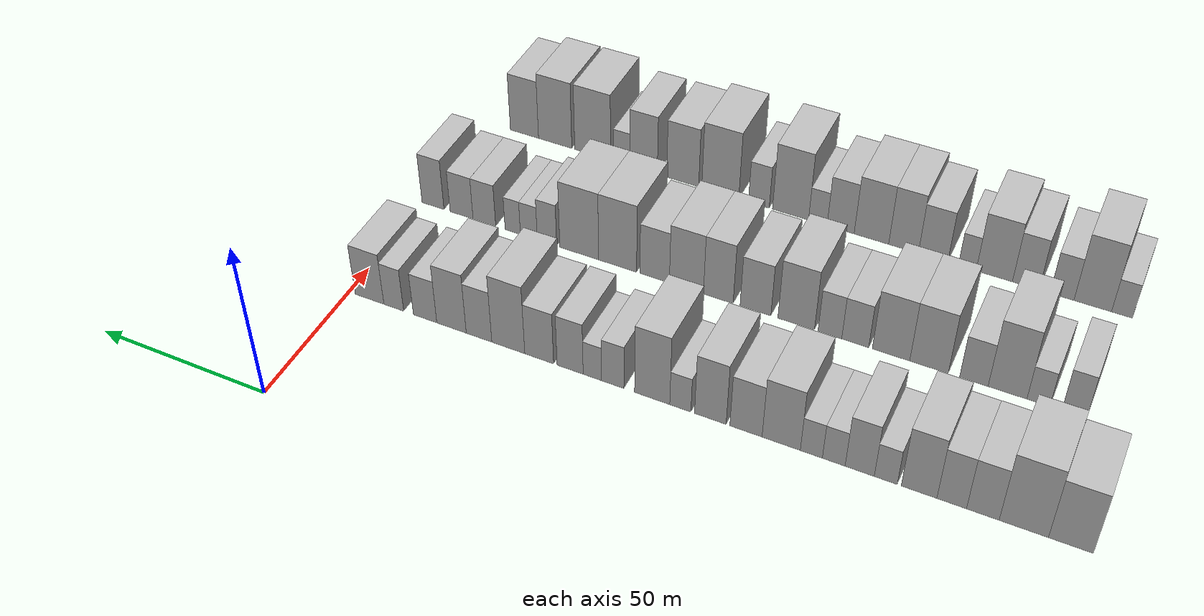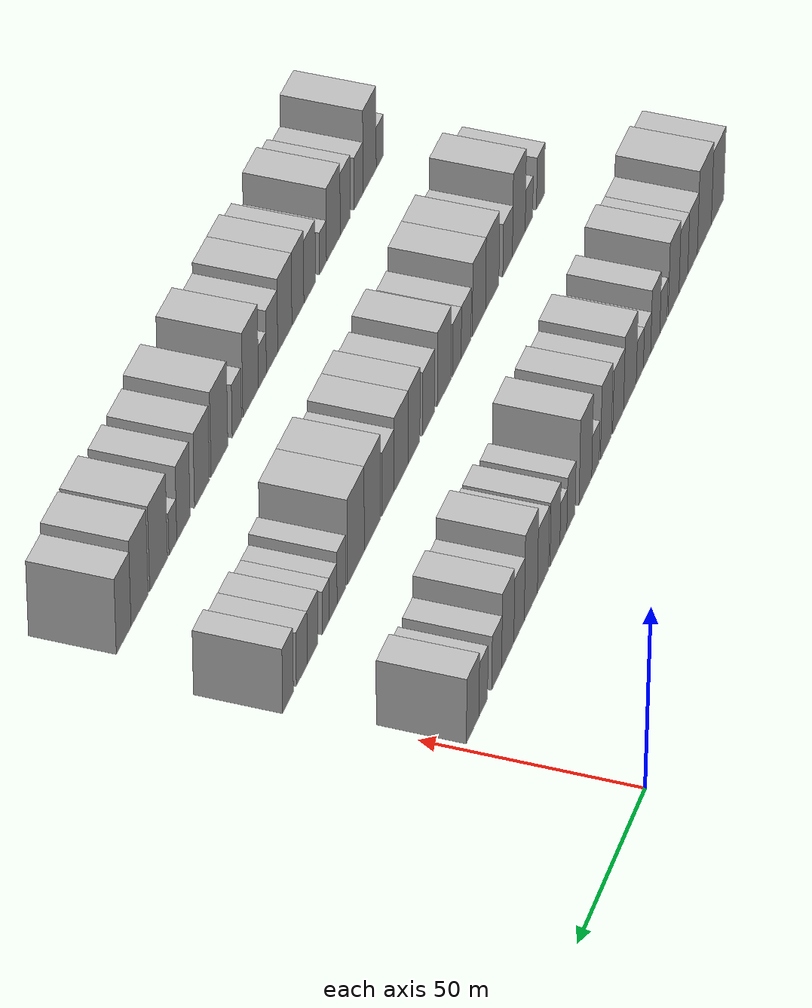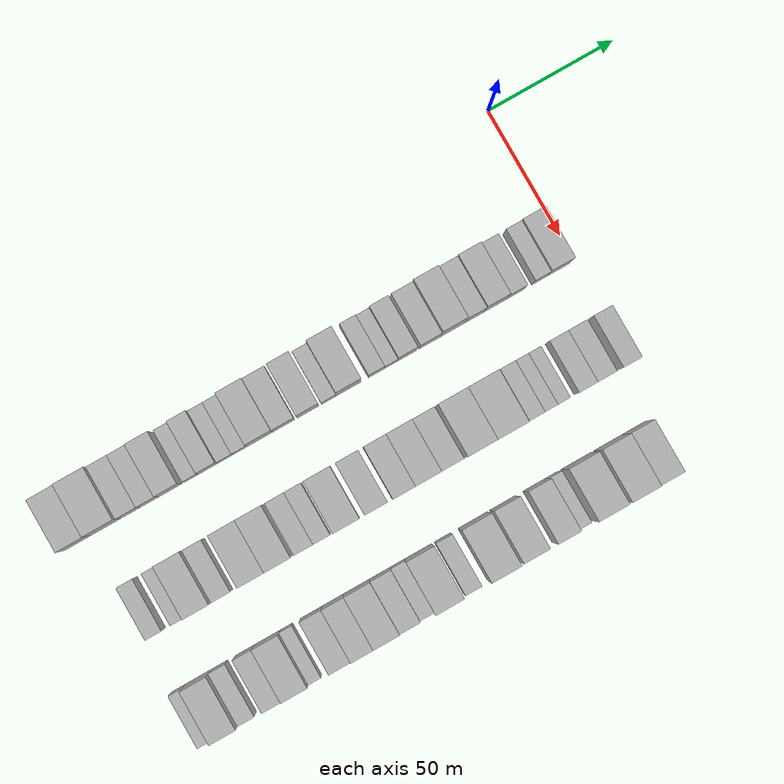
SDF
<sdf version="1.6">
 <world name="default">
  <model name="building_22">
   <static>1</static>
   <pose>50.0000 -196.1051 0 0.000000 0.000000 0.000000</pose>
   <link name="link">
    <pose>0 0 10.50 0 0 0</pose>
    <collision name="collision"><geometry><box><size>20.0000 10.4834 21.0000</size></box></geometry></collision>
    <visual name="visual">
     <cast_shadows>0</cast_shadows>
     <geometry><box><size>20.0000 10.4834 21.0000</size></box></geometry>
     <material>
      <script>
       <uri>model://HANNAS_wall/materials/scripts</uri>
       <uri>model://HANNAS_wall/materials/textures</uri>
       <name>vrc/HANNAS_wall</name>
      </script>
     </material>
    </visual>
   </link>
  </model>
  <model name="building_23">
   <static>1</static>
   <pose>50.0000 -185.0054 0 0.000000 0.000000 0.000000</pose>
   <link name="link">
    <pose>0 0 12.00 0 0 0</pose>
    <collision name="collision"><geometry><box><size>20.0000 11.7162 24.0000</size></box></geometry></collision>
    <visual name="visual">
     <cast_shadows>0</cast_shadows>
     <geometry><box><size>20.0000 11.7162 24.0000</size></box></geometry>
     <material>
      <script>
       <uri>model://HANNAS_wall/materials/scripts</uri>
       <uri>model://HANNAS_wall/materials/textures</uri>
       <name>vrc/HANNAS_wall</name>
      </script>
     </material>
    </visual>
   </link>
  </model>
  <model name="building_24">
   <static>1</static>
   <pose>50.0000 -175.2035 0 0.000000 0.000000 0.000000</pose>
   <link name="link">
    <pose>0 0 9.00 0 0 0</pose>
    <collision name="collision"><geometry><box><size>20.0000 7.8875 18.0000</size></box></geometry></collision>
    <visual name="visual">
     <cast_shadows>0</cast_shadows>
     <geometry><box><size>20.0000 7.8875 18.0000</size></box></geometry>
     <material>
      <script>
       <uri>model://HANNAS_wall/materials/scripts</uri>
       <uri>model://HANNAS_wall/materials/textures</uri>
       <name>vrc/HANNAS_wall</name>
      </script>
     </material>
    </visual>
   </link>
  </model>
  <model name="building_25">
   <static>1</static>
   <pose>50.0000 -167.6401 0 0.000000 0.000000 0.000000</pose>
   <link name="link">
    <pose>0 0 9.00 0 0 0</pose>
    <collision name="collision"><geometry><box><size>20.0000 7.2393 18.0000</size></box></geometry></collision>
    <visual name="visual">
     <cast_shadows>0</cast_shadows>
     <geometry><box><size>20.0000 7.2393 18.0000</size></box></geometry>
     <material>
      <script>
       <uri>model://HANNAS_wall/materials/scripts</uri>
       <uri>model://HANNAS_wall/materials/textures</uri>
       <name>vrc/HANNAS_wall</name>
      </script>
     </material>
    </visual>
   </link>
  </model>
  <model name="building_26">
   <static>1</static>
   <pose>50.0000 -159.6089 0 0.000000 0.000000 0.000000</pose>
   <link name="link">
    <pose>0 0 10.50 0 0 0</pose>
    <collision name="collision"><geometry><box><size>20.0000 8.8232 21.0000</size></box></geometry></collision>
    <visual name="visual">
     <cast_shadows>0</cast_shadows>
     <geometry><box><size>20.0000 8.8232 21.0000</size></box></geometry>
     <material>
      <script>
       <uri>model://HANNAS_wall/materials/scripts</uri>
       <uri>model://HANNAS_wall/materials/textures</uri>
       <name>vrc/HANNAS_wall</name>
      </script>
     </material>
    </visual>
   </link>
  </model>
  <model name="building_27">
   <static>1</static>
   <pose>50.0000 -151.3095 0 0.000000 0.000000 0.000000</pose>
   <link name="link">
    <pose>0 0 6.00 0 0 0</pose>
    <collision name="collision"><geometry><box><size>20.0000 5.7755 12.0000</size></box></geometry></collision>
    <visual name="visual">
     <cast_shadows>0</cast_shadows>
     <geometry><box><size>20.0000 5.7755 12.0000</size></box></geometry>
     <material>
      <script>
       <uri>model://HANNAS_wall/materials/scripts</uri>
       <uri>model://HANNAS_wall/materials/textures</uri>
       <name>vrc/HANNAS_wall</name>
      </script>
     </material>
    </visual>
   </link>
  </model>
  <model name="building_28">
   <static>1</static>
   <pose>50.0000 -144.7260 0 0.000000 0.000000 0.000000</pose>
   <link name="link">
    <pose>0 0 9.00 0 0 0</pose>
    <collision name="collision"><geometry><box><size>20.0000 7.3917 18.0000</size></box></geometry></collision>
    <visual name="visual">
     <cast_shadows>0</cast_shadows>
     <geometry><box><size>20.0000 7.3917 18.0000</size></box></geometry>
     <material>
      <script>
       <uri>model://HANNAS_wall/materials/scripts</uri>
       <uri>model://HANNAS_wall/materials/textures</uri>
       <name>vrc/HANNAS_wall</name>
      </script>
     </material>
    </visual>
   </link>
  </model>
  <model name="building_29">
   <static>1</static>
   <pose>50.0000 -138.1124 0 0.000000 0.000000 0.000000</pose>
   <link name="link">
    <pose>0 0 6.00 0 0 0</pose>
    <collision name="collision"><geometry><box><size>20.0000 5.8354 12.0000</size></box></geometry></collision>
    <visual name="visual">
     <cast_shadows>0</cast_shadows>
     <geometry><box><size>20.0000 5.8354 12.0000</size></box></geometry>
     <material>
      <script>
       <uri>model://HANNAS_wall/materials/scripts</uri>
       <uri>model://HANNAS_wall/materials/textures</uri>
       <name>vrc/HANNAS_wall</name>
      </script>
     </material>
    </visual>
   </link>
  </model>
  <model name="building_30">
   <static>1</static>
   <pose>50.0000 -132.3395 0 0.000000 0.000000 0.000000</pose>
   <link name="link">
    <pose>0 0 6.00 0 0 0</pose>
    <collision name="collision"><geometry><box><size>20.0000 5.7104 12.0000</size></box></geometry></collision>
    <visual name="visual">
     <cast_shadows>0</cast_shadows>
     <geometry><box><size>20.0000 5.7104 12.0000</size></box></geometry>
     <material>
      <script>
       <uri>model://HANNAS_wall/materials/scripts</uri>
       <uri>model://HANNAS_wall/materials/textures</uri>
       <name>vrc/HANNAS_wall</name>
      </script>
     </material>
    </visual>
   </link>
  </model>
  <model name="building_31">
   <static>1</static>
   <pose>50.0000 -124.4697 0 0.000000 0.000000 0.000000</pose>
   <link name="link">
    <pose>0 0 10.50 0 0 0</pose>
    <collision name="collision"><geometry><box><size>20.0000 10.0291 21.0000</size></box></geometry></collision>
    <visual name="visual">
     <cast_shadows>0</cast_shadows>
     <geometry><box><size>20.0000 10.0291 21.0000</size></box></geometry>
     <material>
      <script>
       <uri>model://HANNAS_wall/materials/scripts</uri>
       <uri>model://HANNAS_wall/materials/textures</uri>
       <name>vrc/HANNAS_wall</name>
      </script>
     </material>
    </visual>
   </link>
  </model>
  <model name="building_32">
   <static>1</static>
   <pose>50.0000 -115.1721 0 0.000000 0.000000 0.000000</pose>
   <link name="link">
    <pose>0 0 9.00 0 0 0</pose>
    <collision name="collision"><geometry><box><size>20.0000 8.5661 18.0000</size></box></geometry></collision>
    <visual name="visual">
     <cast_shadows>0</cast_shadows>
     <geometry><box><size>20.0000 8.5661 18.0000</size></box></geometry>
     <material>
      <script>
       <uri>model://HANNAS_wall/materials/scripts</uri>
       <uri>model://HANNAS_wall/materials/textures</uri>
       <name>vrc/HANNAS_wall</name>
      </script>
     </material>
    </visual>
   </link>
  </model>
  <model name="building_33">
   <static>1</static>
   <pose>50.0000 -105.6308 0 0.000000 0.000000 0.000000</pose>
   <link name="link">
    <pose>0 0 10.50 0 0 0</pose>
    <collision name="collision"><geometry><box><size>20.0000 8.5166 21.0000</size></box></geometry></collision>
    <visual name="visual">
     <cast_shadows>0</cast_shadows>
     <geometry><box><size>20.0000 8.5166 21.0000</size></box></geometry>
     <material>
      <script>
       <uri>model://HANNAS_wall/materials/scripts</uri>
       <uri>model://HANNAS_wall/materials/textures</uri>
       <name>vrc/HANNAS_wall</name>
      </script>
     </material>
    </visual>
   </link>
  </model>
  <model name="building_34">
   <static>1</static>
   <pose>50.0000 -97.4815 0 0.000000 0.000000 0.000000</pose>
   <link name="link">
    <pose>0 0 6.00 0 0 0</pose>
    <collision name="collision"><geometry><box><size>20.0000 5.7820 12.0000</size></box></geometry></collision>
    <visual name="visual">
     <cast_shadows>0</cast_shadows>
     <geometry><box><size>20.0000 5.7820 12.0000</size></box></geometry>
     <material>
      <script>
       <uri>model://HANNAS_wall/materials/scripts</uri>
       <uri>model://HANNAS_wall/materials/textures</uri>
       <name>vrc/HANNAS_wall</name>
      </script>
     </material>
    </visual>
   </link>
  </model>
  <model name="building_35">
   <static>1</static>
   <pose>50.0000 -89.7248 0 0.000000 0.000000 0.000000</pose>
   <link name="link">
    <pose>0 0 12.00 0 0 0</pose>
    <collision name="collision"><geometry><box><size>20.0000 9.7313 24.0000</size></box></geometry></collision>
    <visual name="visual">
     <cast_shadows>0</cast_shadows>
     <geometry><box><size>20.0000 9.7313 24.0000</size></box></geometry>
     <material>
      <script>
       <uri>model://HANNAS_wall/materials/scripts</uri>
       <uri>model://HANNAS_wall/materials/textures</uri>
       <name>vrc/HANNAS_wall</name>
      </script>
     </material>
    </visual>
   </link>
  </model>
  <model name="building_36">
   <static>1</static>
   <pose>50.0000 -78.7256 0 0.000000 0.000000 0.000000</pose>
   <link name="link">
    <pose>0 0 7.50 0 0 0</pose>
    <collision name="collision"><geometry><box><size>20.0000 6.2670 15.0000</size></box></geometry></collision>
    <visual name="visual">
     <cast_shadows>0</cast_shadows>
     <geometry><box><size>20.0000 6.2670 15.0000</size></box></geometry>
     <material>
      <script>
       <uri>model://HANNAS_wall/materials/scripts</uri>
       <uri>model://HANNAS_wall/materials/textures</uri>
       <name>vrc/HANNAS_wall</name>
      </script>
     </material>
    </visual>
   </link>
  </model>
  <model name="building_37">
   <static>1</static>
   <pose>50.0000 -72.9739 0 0.000000 0.000000 0.000000</pose>
   <link name="link">
    <pose>0 0 6.00 0 0 0</pose>
    <collision name="collision"><geometry><box><size>20.0000 5.2365 12.0000</size></box></geometry></collision>
    <visual name="visual">
     <cast_shadows>0</cast_shadows>
     <geometry><box><size>20.0000 5.2365 12.0000</size></box></geometry>
     <material>
      <script>
       <uri>model://HANNAS_wall/materials/scripts</uri>
       <uri>model://HANNAS_wall/materials/textures</uri>
       <name>vrc/HANNAS_wall</name>
      </script>
     </material>
    </visual>
   </link>
  </model>
  <model name="building_38">
   <static>1</static>
   <pose>50.0000 -66.6199 0 0.000000 0.000000 0.000000</pose>
   <link name="link">
    <pose>0 0 9.00 0 0 0</pose>
    <collision name="collision"><geometry><box><size>20.0000 7.4715 18.0000</size></box></geometry></collision>
    <visual name="visual">
     <cast_shadows>0</cast_shadows>
     <geometry><box><size>20.0000 7.4715 18.0000</size></box></geometry>
     <material>
      <script>
       <uri>model://HANNAS_wall/materials/scripts</uri>
       <uri>model://HANNAS_wall/materials/textures</uri>
       <name>vrc/HANNAS_wall</name>
      </script>
     </material>
    </visual>
   </link>
  </model>
  <model name="building_39">
   <static>1</static>
   <pose>50.0000 -57.6942 0 0.000000 0.000000 0.000000</pose>
   <link name="link">
    <pose>0 0 9.00 0 0 0</pose>
    <collision name="collision"><geometry><box><size>20.0000 8.3799 18.0000</size></box></geometry></collision>
    <visual name="visual">
     <cast_shadows>0</cast_shadows>
     <geometry><box><size>20.0000 8.3799 18.0000</size></box></geometry>
     <material>
      <script>
       <uri>model://HANNAS_wall/materials/scripts</uri>
       <uri>model://HANNAS_wall/materials/textures</uri>
       <name>vrc/HANNAS_wall</name>
      </script>
     </material>
    </visual>
   </link>
  </model>
  <model name="building_40">
   <static>1</static>
   <pose>50.0000 -48.6485 0 0.000000 0.000000 0.000000</pose>
   <link name="link">
    <pose>0 0 12.00 0 0 0</pose>
    <collision name="collision"><geometry><box><size>20.0000 9.7114 24.0000</size></box></geometry></collision>
    <visual name="visual">
     <cast_shadows>0</cast_shadows>
     <geometry><box><size>20.0000 9.7114 24.0000</size></box></geometry>
     <material>
      <script>
       <uri>model://HANNAS_wall/materials/scripts</uri>
       <uri>model://HANNAS_wall/materials/textures</uri>
       <name>vrc/HANNAS_wall</name>
      </script>
     </material>
    </visual>
   </link>
  </model>
  <model name="building_41">
   <static>1</static>
   <pose>50.0000 -39.9745 0 0.000000 0.000000 0.000000</pose>
   <link name="link">
    <pose>0 0 9.00 0 0 0</pose>
    <collision name="collision"><geometry><box><size>20.0000 7.6367 18.0000</size></box></geometry></collision>
    <visual name="visual">
     <cast_shadows>0</cast_shadows>
     <geometry><box><size>20.0000 7.6367 18.0000</size></box></geometry>
     <material>
      <script>
       <uri>model://HANNAS_wall/materials/scripts</uri>
       <uri>model://HANNAS_wall/materials/textures</uri>
       <name>vrc/HANNAS_wall</name>
      </script>
     </material>
    </visual>
   </link>
  </model>
  <model name="building_42">
   <static>1</static>
   <pose>50.0000 -31.7068 0 0.000000 0.000000 0.000000</pose>
   <link name="link">
    <pose>0 0 10.50 0 0 0</pose>
    <collision name="collision"><geometry><box><size>20.0000 8.8987 21.0000</size></box></geometry></collision>
    <visual name="visual">
     <cast_shadows>0</cast_shadows>
     <geometry><box><size>20.0000 8.8987 21.0000</size></box></geometry>
     <material>
      <script>
       <uri>model://HANNAS_wall/materials/scripts</uri>
       <uri>model://HANNAS_wall/materials/textures</uri>
       <name>vrc/HANNAS_wall</name>
      </script>
     </material>
    </visual>
   </link>
  </model>
  <model name="building_43">
   <static>1</static>
   <pose>50.0000 -23.6906 0 0.000000 0.000000 0.000000</pose>
   <link name="link">
    <pose>0 0 7.50 0 0 0</pose>
    <collision name="collision"><geometry><box><size>20.0000 7.1337 15.0000</size></box></geometry></collision>
    <visual name="visual">
     <cast_shadows>0</cast_shadows>
     <geometry><box><size>20.0000 7.1337 15.0000</size></box></geometry>
     <material>
      <script>
       <uri>model://HANNAS_wall/materials/scripts</uri>
       <uri>model://HANNAS_wall/materials/textures</uri>
       <name>vrc/HANNAS_wall</name>
      </script>
     </material>
    </visual>
   </link>
  </model>
  <model name="building_44">
   <static>1</static>
   <pose>50.0000 -14.0508 0 0.000000 0.000000 0.000000</pose>
   <link name="link">
    <pose>0 0 7.50 0 0 0</pose>
    <collision name="collision"><geometry><box><size>20.0000 6.1459 15.0000</size></box></geometry></collision>
    <visual name="visual">
     <cast_shadows>0</cast_shadows>
     <geometry><box><size>20.0000 6.1459 15.0000</size></box></geometry>
     <material>
      <script>
       <uri>model://HANNAS_wall/materials/scripts</uri>
       <uri>model://HANNAS_wall/materials/textures</uri>
       <name>vrc/HANNAS_wall</name>
      </script>
     </material>
    </visual>
   </link>
  </model>
  <model name="building_45">
   <static>1</static>
   <pose>50.0000 -6.4966 0 0.000000 0.000000 0.000000</pose>
   <link name="link">
    <pose>0 0 9.00 0 0 0</pose>
    <collision name="collision"><geometry><box><size>20.0000 8.9625 18.0000</size></box></geometry></collision>
    <visual name="visual">
     <cast_shadows>0</cast_shadows>
     <geometry><box><size>20.0000 8.9625 18.0000</size></box></geometry>
     <material>
      <script>
       <uri>model://HANNAS_wall/materials/scripts</uri>
       <uri>model://HANNAS_wall/materials/textures</uri>
       <name>vrc/HANNAS_wall</name>
      </script>
     </material>
    </visual>
   </link>
  </model>
  <model name="building_113">
   <static>1</static>
   <pose>90.0000 -187.3587 0 0.000000 0.000000 0.000000</pose>
   <link name="link">
    <pose>0 0 7.50 0 0 0</pose>
    <collision name="collision"><geometry><box><size>20.0000 6.2613 15.0000</size></box></geometry></collision>
    <visual name="visual">
     <cast_shadows>0</cast_shadows>
     <geometry><box><size>20.0000 6.2613 15.0000</size></box></geometry>
     <material>
      <script>
       <uri>model://HANNAS_wall/materials/scripts</uri>
       <uri>model://HANNAS_wall/materials/textures</uri>
       <name>vrc/HANNAS_wall</name>
      </script>
     </material>
    </visual>
   </link>
  </model>
  <model name="building_114">
   <static>1</static>
   <pose>90.0000 -178.2868 0 0.000000 0.000000 0.000000</pose>
   <link name="link">
    <pose>0 0 6.00 0 0 0</pose>
    <collision name="collision"><geometry><box><size>20.0000 5.8825 12.0000</size></box></geometry></collision>
    <visual name="visual">
     <cast_shadows>0</cast_shadows>
     <geometry><box><size>20.0000 5.8825 12.0000</size></box></geometry>
     <material>
      <script>
       <uri>model://HANNAS_wall/materials/scripts</uri>
       <uri>model://HANNAS_wall/materials/textures</uri>
       <name>vrc/HANNAS_wall</name>
      </script>
     </material>
    </visual>
   </link>
  </model>
  <model name="building_115">
   <static>1</static>
   <pose>90.0000 -170.3309 0 0.000000 0.000000 0.000000</pose>
   <link name="link">
    <pose>0 0 12.00 0 0 0</pose>
    <collision name="collision"><geometry><box><size>20.0000 10.0293 24.0000</size></box></geometry></collision>
    <visual name="visual">
     <cast_shadows>0</cast_shadows>
     <geometry><box><size>20.0000 10.0293 24.0000</size></box></geometry>
     <material>
      <script>
       <uri>model://HANNAS_wall/materials/scripts</uri>
       <uri>model://HANNAS_wall/materials/textures</uri>
       <name>vrc/HANNAS_wall</name>
      </script>
     </material>
    </visual>
   </link>
  </model>
  <model name="building_116">
   <static>1</static>
   <pose>90.0000 -161.5936 0 0.000000 0.000000 0.000000</pose>
   <link name="link">
    <pose>0 0 7.50 0 0 0</pose>
    <collision name="collision"><geometry><box><size>20.0000 7.4453 15.0000</size></box></geometry></collision>
    <visual name="visual">
     <cast_shadows>0</cast_shadows>
     <geometry><box><size>20.0000 7.4453 15.0000</size></box></geometry>
     <material>
      <script>
       <uri>model://HANNAS_wall/materials/scripts</uri>
       <uri>model://HANNAS_wall/materials/textures</uri>
       <name>vrc/HANNAS_wall</name>
      </script>
     </material>
    </visual>
   </link>
  </model>
  <model name="building_117">
   <static>1</static>
   <pose>90.0000 -149.7390 0 0.000000 0.000000 0.000000</pose>
   <link name="link">
    <pose>0 0 10.50 0 0 0</pose>
    <collision name="collision"><geometry><box><size>20.0000 10.2638 21.0000</size></box></geometry></collision>
    <visual name="visual">
     <cast_shadows>0</cast_shadows>
     <geometry><box><size>20.0000 10.2638 21.0000</size></box></geometry>
     <material>
      <script>
       <uri>model://HANNAS_wall/materials/scripts</uri>
       <uri>model://HANNAS_wall/materials/textures</uri>
       <name>vrc/HANNAS_wall</name>
      </script>
     </material>
    </visual>
   </link>
  </model>
  <model name="building_118">
   <static>1</static>
   <pose>90.0000 -139.5516 0 0.000000 0.000000 0.000000</pose>
   <link name="link">
    <pose>0 0 10.50 0 0 0</pose>
    <collision name="collision"><geometry><box><size>20.0000 10.1109 21.0000</size></box></geometry></collision>
    <visual name="visual">
     <cast_shadows>0</cast_shadows>
     <geometry><box><size>20.0000 10.1109 21.0000</size></box></geometry>
     <material>
      <script>
       <uri>model://HANNAS_wall/materials/scripts</uri>
       <uri>model://HANNAS_wall/materials/textures</uri>
       <name>vrc/HANNAS_wall</name>
      </script>
     </material>
    </visual>
   </link>
  </model>
  <model name="building_119">
   <static>1</static>
   <pose>90.0000 -129.7932 0 0.000000 0.000000 0.000000</pose>
   <link name="link">
    <pose>0 0 7.50 0 0 0</pose>
    <collision name="collision"><geometry><box><size>20.0000 7.4059 15.0000</size></box></geometry></collision>
    <visual name="visual">
     <cast_shadows>0</cast_shadows>
     <geometry><box><size>20.0000 7.4059 15.0000</size></box></geometry>
     <material>
      <script>
       <uri>model://HANNAS_wall/materials/scripts</uri>
       <uri>model://HANNAS_wall/materials/textures</uri>
       <name>vrc/HANNAS_wall</name>
      </script>
     </material>
    </visual>
   </link>
  </model>
  <model name="building_120">
   <static>1</static>
   <pose>90.0000 -122.8068 0 0.000000 0.000000 0.000000</pose>
   <link name="link">
    <pose>0 0 7.50 0 0 0</pose>
    <collision name="collision"><geometry><box><size>20.0000 6.5670 15.0000</size></box></geometry></collision>
    <visual name="visual">
     <cast_shadows>0</cast_shadows>
     <geometry><box><size>20.0000 6.5670 15.0000</size></box></geometry>
     <material>
      <script>
       <uri>model://HANNAS_wall/materials/scripts</uri>
       <uri>model://HANNAS_wall/materials/textures</uri>
       <name>vrc/HANNAS_wall</name>
      </script>
     </material>
    </visual>
   </link>
  </model>
  <model name="building_121">
   <static>1</static>
   <pose>90.0000 -113.3795 0 0.000000 0.000000 0.000000</pose>
   <link name="link">
    <pose>0 0 10.50 0 0 0</pose>
    <collision name="collision"><geometry><box><size>20.0000 10.2877 21.0000</size></box></geometry></collision>
    <visual name="visual">
     <cast_shadows>0</cast_shadows>
     <geometry><box><size>20.0000 10.2877 21.0000</size></box></geometry>
     <material>
      <script>
       <uri>model://HANNAS_wall/materials/scripts</uri>
       <uri>model://HANNAS_wall/materials/textures</uri>
       <name>vrc/HANNAS_wall</name>
      </script>
     </material>
    </visual>
   </link>
  </model>
  <model name="building_122">
   <static>1</static>
   <pose>90.0000 -101.8317 0 0.000000 0.000000 0.000000</pose>
   <link name="link">
    <pose>0 0 9.00 0 0 0</pose>
    <collision name="collision"><geometry><box><size>20.0000 8.8078 18.0000</size></box></geometry></collision>
    <visual name="visual">
     <cast_shadows>0</cast_shadows>
     <geometry><box><size>20.0000 8.8078 18.0000</size></box></geometry>
     <material>
      <script>
       <uri>model://HANNAS_wall/materials/scripts</uri>
       <uri>model://HANNAS_wall/materials/textures</uri>
       <name>vrc/HANNAS_wall</name>
      </script>
     </material>
    </visual>
   </link>
  </model>
  <model name="building_123">
   <static>1</static>
   <pose>90.0000 -91.1064 0 0.000000 0.000000 0.000000</pose>
   <link name="link">
    <pose>0 0 10.50 0 0 0</pose>
    <collision name="collision"><geometry><box><size>20.0000 8.6429 21.0000</size></box></geometry></collision>
    <visual name="visual">
     <cast_shadows>0</cast_shadows>
     <geometry><box><size>20.0000 8.6429 21.0000</size></box></geometry>
     <material>
      <script>
       <uri>model://HANNAS_wall/materials/scripts</uri>
       <uri>model://HANNAS_wall/materials/textures</uri>
       <name>vrc/HANNAS_wall</name>
      </script>
     </material>
    </visual>
   </link>
  </model>
  <model name="building_124">
   <static>1</static>
   <pose>90.0000 -81.7713 0 0.000000 0.000000 0.000000</pose>
   <link name="link">
    <pose>0 0 10.50 0 0 0</pose>
    <collision name="collision"><geometry><box><size>20.0000 10.0272 21.0000</size></box></geometry></collision>
    <visual name="visual">
     <cast_shadows>0</cast_shadows>
     <geometry><box><size>20.0000 10.0272 21.0000</size></box></geometry>
     <material>
      <script>
       <uri>model://HANNAS_wall/materials/scripts</uri>
       <uri>model://HANNAS_wall/materials/textures</uri>
       <name>vrc/HANNAS_wall</name>
      </script>
     </material>
    </visual>
   </link>
  </model>
  <model name="building_125">
   <static>1</static>
   <pose>90.0000 -72.3672 0 0.000000 0.000000 0.000000</pose>
   <link name="link">
    <pose>0 0 9.00 0 0 0</pose>
    <collision name="collision"><geometry><box><size>20.0000 8.7811 18.0000</size></box></geometry></collision>
    <visual name="visual">
     <cast_shadows>0</cast_shadows>
     <geometry><box><size>20.0000 8.7811 18.0000</size></box></geometry>
     <material>
      <script>
       <uri>model://HANNAS_wall/materials/scripts</uri>
       <uri>model://HANNAS_wall/materials/textures</uri>
       <name>vrc/HANNAS_wall</name>
      </script>
     </material>
    </visual>
   </link>
  </model>
  <model name="building_126">
   <static>1</static>
   <pose>90.0000 -61.2180 0 0.000000 0.000000 0.000000</pose>
   <link name="link">
    <pose>0 0 12.00 0 0 0</pose>
    <collision name="collision"><geometry><box><size>20.0000 11.5173 24.0000</size></box></geometry></collision>
    <visual name="visual">
     <cast_shadows>0</cast_shadows>
     <geometry><box><size>20.0000 11.5173 24.0000</size></box></geometry>
     <material>
      <script>
       <uri>model://HANNAS_wall/materials/scripts</uri>
       <uri>model://HANNAS_wall/materials/textures</uri>
       <name>vrc/HANNAS_wall</name>
      </script>
     </material>
    </visual>
   </link>
  </model>
  <model name="building_127">
   <static>1</static>
   <pose>90.0000 -49.4873 0 0.000000 0.000000 0.000000</pose>
   <link name="link">
    <pose>0 0 12.00 0 0 0</pose>
    <collision name="collision"><geometry><box><size>20.0000 11.9440 24.0000</size></box></geometry></collision>
    <visual name="visual">
     <cast_shadows>0</cast_shadows>
     <geometry><box><size>20.0000 11.9440 24.0000</size></box></geometry>
     <material>
      <script>
       <uri>model://HANNAS_wall/materials/scripts</uri>
       <uri>model://HANNAS_wall/materials/textures</uri>
       <name>vrc/HANNAS_wall</name>
      </script>
     </material>
    </visual>
   </link>
  </model>
  <model name="building_128">
   <static>1</static>
   <pose>90.0000 -39.4839 0 0.000000 0.000000 0.000000</pose>
   <link name="link">
    <pose>0 0 7.50 0 0 0</pose>
    <collision name="collision"><geometry><box><size>20.0000 6.0630 15.0000</size></box></geometry></collision>
    <visual name="visual">
     <cast_shadows>0</cast_shadows>
     <geometry><box><size>20.0000 6.0630 15.0000</size></box></geometry>
     <material>
      <script>
       <uri>model://HANNAS_wall/materials/scripts</uri>
       <uri>model://HANNAS_wall/materials/textures</uri>
       <name>vrc/HANNAS_wall</name>
      </script>
     </material>
    </visual>
   </link>
  </model>
  <model name="building_129">
   <static>1</static>
   <pose>90.0000 -33.7947 0 0.000000 0.000000 0.000000</pose>
   <link name="link">
    <pose>0 0 6.00 0 0 0</pose>
    <collision name="collision"><geometry><box><size>20.0000 5.3154 12.0000</size></box></geometry></collision>
    <visual name="visual">
     <cast_shadows>0</cast_shadows>
     <geometry><box><size>20.0000 5.3154 12.0000</size></box></geometry>
     <material>
      <script>
       <uri>model://HANNAS_wall/materials/scripts</uri>
       <uri>model://HANNAS_wall/materials/textures</uri>
       <name>vrc/HANNAS_wall</name>
      </script>
     </material>
    </visual>
   </link>
  </model>
  <model name="building_130">
   <static>1</static>
   <pose>90.0000 -28.7084 0 0.000000 0.000000 0.000000</pose>
   <link name="link">
    <pose>0 0 6.00 0 0 0</pose>
    <collision name="collision"><geometry><box><size>20.0000 4.8571 12.0000</size></box></geometry></collision>
    <visual name="visual">
     <cast_shadows>0</cast_shadows>
     <geometry><box><size>20.0000 4.8571 12.0000</size></box></geometry>
     <material>
      <script>
       <uri>model://HANNAS_wall/materials/scripts</uri>
       <uri>model://HANNAS_wall/materials/textures</uri>
       <name>vrc/HANNAS_wall</name>
      </script>
     </material>
    </visual>
   </link>
  </model>
  <model name="building_131">
   <static>1</static>
   <pose>90.0000 -19.6308 0 0.000000 0.000000 0.000000</pose>
   <link name="link">
    <pose>0 0 7.50 0 0 0</pose>
    <collision name="collision"><geometry><box><size>20.0000 7.2981 15.0000</size></box></geometry></collision>
    <visual name="visual">
     <cast_shadows>0</cast_shadows>
     <geometry><box><size>20.0000 7.2981 15.0000</size></box></geometry>
     <material>
      <script>
       <uri>model://HANNAS_wall/materials/scripts</uri>
       <uri>model://HANNAS_wall/materials/textures</uri>
       <name>vrc/HANNAS_wall</name>
      </script>
     </material>
    </visual>
   </link>
  </model>
  <model name="building_132">
   <static>1</static>
   <pose>90.0000 -12.2653 0 0.000000 0.000000 0.000000</pose>
   <link name="link">
    <pose>0 0 7.50 0 0 0</pose>
    <collision name="collision"><geometry><box><size>20.0000 7.4328 15.0000</size></box></geometry></collision>
    <visual name="visual">
     <cast_shadows>0</cast_shadows>
     <geometry><box><size>20.0000 7.4328 15.0000</size></box></geometry>
     <material>
      <script>
       <uri>model://HANNAS_wall/materials/scripts</uri>
       <uri>model://HANNAS_wall/materials/textures</uri>
       <name>vrc/HANNAS_wall</name>
      </script>
     </material>
    </visual>
   </link>
  </model>
  <model name="building_133">
   <static>1</static>
   <pose>90.0000 -2.9436 0 0.000000 0.000000 0.000000</pose>
   <link name="link">
    <pose>0 0 9.00 0 0 0</pose>
    <collision name="collision"><geometry><box><size>20.0000 7.2105 18.0000</size></box></geometry></collision>
    <visual name="visual">
     <cast_shadows>0</cast_shadows>
     <geometry><box><size>20.0000 7.2105 18.0000</size></box></geometry>
     <material>
      <script>
       <uri>model://HANNAS_wall/materials/scripts</uri>
       <uri>model://HANNAS_wall/materials/textures</uri>
       <name>vrc/HANNAS_wall</name>
      </script>
     </material>
    </visual>
   </link>
  </model>
  <model name="building_196">
   <static>1</static>
   <pose>130.0000 -190.5794 0 0.000000 0.000000 0.000000</pose>
   <link name="link">
    <pose>0 0 6.00 0 0 0</pose>
    <collision name="collision"><geometry><box><size>20.0000 5.5523 12.0000</size></box></geometry></collision>
    <visual name="visual">
     <cast_shadows>0</cast_shadows>
     <geometry><box><size>20.0000 5.5523 12.0000</size></box></geometry>
     <material>
      <script>
       <uri>model://HANNAS_wall/materials/scripts</uri>
       <uri>model://HANNAS_wall/materials/textures</uri>
       <name>vrc/HANNAS_wall</name>
      </script>
     </material>
    </visual>
   </link>
  </model>
  <model name="building_197">
   <static>1</static>
   <pose>130.0000 -182.7657 0 0.000000 0.000000 0.000000</pose>
   <link name="link">
    <pose>0 0 12.00 0 0 0</pose>
    <collision name="collision"><geometry><box><size>20.0000 10.0750 24.0000</size></box></geometry></collision>
    <visual name="visual">
     <cast_shadows>0</cast_shadows>
     <geometry><box><size>20.0000 10.0750 24.0000</size></box></geometry>
     <material>
      <script>
       <uri>model://HANNAS_wall/materials/scripts</uri>
       <uri>model://HANNAS_wall/materials/textures</uri>
       <name>vrc/HANNAS_wall</name>
      </script>
     </material>
    </visual>
   </link>
  </model>
  <model name="building_198">
   <static>1</static>
   <pose>130.0000 -174.5077 0 0.000000 0.000000 0.000000</pose>
   <link name="link">
    <pose>0 0 7.50 0 0 0</pose>
    <collision name="collision"><geometry><box><size>20.0000 6.4411 15.0000</size></box></geometry></collision>
    <visual name="visual">
     <cast_shadows>0</cast_shadows>
     <geometry><box><size>20.0000 6.4411 15.0000</size></box></geometry>
     <material>
      <script>
       <uri>model://HANNAS_wall/materials/scripts</uri>
       <uri>model://HANNAS_wall/materials/textures</uri>
       <name>vrc/HANNAS_wall</name>
      </script>
     </material>
    </visual>
   </link>
  </model>
  <model name="building_199">
   <static>1</static>
   <pose>130.0000 -164.6015 0 0.000000 0.000000 0.000000</pose>
   <link name="link">
    <pose>0 0 9.00 0 0 0</pose>
    <collision name="collision"><geometry><box><size>20.0000 7.3713 18.0000</size></box></geometry></collision>
    <visual name="visual">
     <cast_shadows>0</cast_shadows>
     <geometry><box><size>20.0000 7.3713 18.0000</size></box></geometry>
     <material>
      <script>
       <uri>model://HANNAS_wall/materials/scripts</uri>
       <uri>model://HANNAS_wall/materials/textures</uri>
       <name>vrc/HANNAS_wall</name>
      </script>
     </material>
    </visual>
   </link>
  </model>
  <model name="building_200">
   <static>1</static>
   <pose>130.0000 -155.8561 0 0.000000 0.000000 0.000000</pose>
   <link name="link">
    <pose>0 0 10.50 0 0 0</pose>
    <collision name="collision"><geometry><box><size>20.0000 10.1196 21.0000</size></box></geometry></collision>
    <visual name="visual">
     <cast_shadows>0</cast_shadows>
     <geometry><box><size>20.0000 10.1196 21.0000</size></box></geometry>
     <material>
      <script>
       <uri>model://HANNAS_wall/materials/scripts</uri>
       <uri>model://HANNAS_wall/materials/textures</uri>
       <name>vrc/HANNAS_wall</name>
      </script>
     </material>
    </visual>
   </link>
  </model>
  <model name="building_201">
   <static>1</static>
   <pose>130.0000 -148.3022 0 0.000000 0.000000 0.000000</pose>
   <link name="link">
    <pose>0 0 6.00 0 0 0</pose>
    <collision name="collision"><geometry><box><size>20.0000 4.9881 12.0000</size></box></geometry></collision>
    <visual name="visual">
     <cast_shadows>0</cast_shadows>
     <geometry><box><size>20.0000 4.9881 12.0000</size></box></geometry>
     <material>
      <script>
       <uri>model://HANNAS_wall/materials/scripts</uri>
       <uri>model://HANNAS_wall/materials/textures</uri>
       <name>vrc/HANNAS_wall</name>
      </script>
     </material>
    </visual>
   </link>
  </model>
  <model name="building_202">
   <static>1</static>
   <pose>130.0000 -138.5990 0 0.000000 0.000000 0.000000</pose>
   <link name="link">
    <pose>0 0 9.00 0 0 0</pose>
    <collision name="collision"><geometry><box><size>20.0000 8.4184 18.0000</size></box></geometry></collision>
    <visual name="visual">
     <cast_shadows>0</cast_shadows>
     <geometry><box><size>20.0000 8.4184 18.0000</size></box></geometry>
     <material>
      <script>
       <uri>model://HANNAS_wall/materials/scripts</uri>
       <uri>model://HANNAS_wall/materials/textures</uri>
       <name>vrc/HANNAS_wall</name>
      </script>
     </material>
    </visual>
   </link>
  </model>
  <model name="building_203">
   <static>1</static>
   <pose>130.0000 -130.0967 0 0.000000 0.000000 0.000000</pose>
   <link name="link">
    <pose>0 0 10.50 0 0 0</pose>
    <collision name="collision"><geometry><box><size>20.0000 8.5862 21.0000</size></box></geometry></collision>
    <visual name="visual">
     <cast_shadows>0</cast_shadows>
     <geometry><box><size>20.0000 8.5862 21.0000</size></box></geometry>
     <material>
      <script>
       <uri>model://HANNAS_wall/materials/scripts</uri>
       <uri>model://HANNAS_wall/materials/textures</uri>
       <name>vrc/HANNAS_wall</name>
      </script>
     </material>
    </visual>
   </link>
  </model>
  <model name="building_204">
   <static>1</static>
   <pose>130.0000 -120.7475 0 0.000000 0.000000 0.000000</pose>
   <link name="link">
    <pose>0 0 10.50 0 0 0</pose>
    <collision name="collision"><geometry><box><size>20.0000 10.1121 21.0000</size></box></geometry></collision>
    <visual name="visual">
     <cast_shadows>0</cast_shadows>
     <geometry><box><size>20.0000 10.1121 21.0000</size></box></geometry>
     <material>
      <script>
       <uri>model://HANNAS_wall/materials/scripts</uri>
       <uri>model://HANNAS_wall/materials/textures</uri>
       <name>vrc/HANNAS_wall</name>
      </script>
     </material>
    </visual>
   </link>
  </model>
  <model name="building_205">
   <static>1</static>
   <pose>130.0000 -111.6807 0 0.000000 0.000000 0.000000</pose>
   <link name="link">
    <pose>0 0 9.00 0 0 0</pose>
    <collision name="collision"><geometry><box><size>20.0000 8.0216 18.0000</size></box></geometry></collision>
    <visual name="visual">
     <cast_shadows>0</cast_shadows>
     <geometry><box><size>20.0000 8.0216 18.0000</size></box></geometry>
     <material>
      <script>
       <uri>model://HANNAS_wall/materials/scripts</uri>
       <uri>model://HANNAS_wall/materials/textures</uri>
       <name>vrc/HANNAS_wall</name>
      </script>
     </material>
    </visual>
   </link>
  </model>
  <model name="building_206">
   <static>1</static>
   <pose>130.0000 -104.8942 0 0.000000 0.000000 0.000000</pose>
   <link name="link">
    <pose>0 0 6.00 0 0 0</pose>
    <collision name="collision"><geometry><box><size>20.0000 5.5514 12.0000</size></box></geometry></collision>
    <visual name="visual">
     <cast_shadows>0</cast_shadows>
     <geometry><box><size>20.0000 5.5514 12.0000</size></box></geometry>
     <material>
      <script>
       <uri>model://HANNAS_wall/materials/scripts</uri>
       <uri>model://HANNAS_wall/materials/textures</uri>
       <name>vrc/HANNAS_wall</name>
      </script>
     </material>
    </visual>
   </link>
  </model>
  <model name="building_207">
   <static>1</static>
   <pose>130.0000 -96.6613 0 0.000000 0.000000 0.000000</pose>
   <link name="link">
    <pose>0 0 12.00 0 0 0</pose>
    <collision name="collision"><geometry><box><size>20.0000 10.9146 24.0000</size></box></geometry></collision>
    <visual name="visual">
     <cast_shadows>0</cast_shadows>
     <geometry><box><size>20.0000 10.9146 24.0000</size></box></geometry>
     <material>
      <script>
       <uri>model://HANNAS_wall/materials/scripts</uri>
       <uri>model://HANNAS_wall/materials/textures</uri>
       <name>vrc/HANNAS_wall</name>
      </script>
     </material>
    </visual>
   </link>
  </model>
  <model name="building_208">
   <static>1</static>
   <pose>130.0000 -87.0206 0 0.000000 0.000000 0.000000</pose>
   <link name="link">
    <pose>0 0 7.50 0 0 0</pose>
    <collision name="collision"><geometry><box><size>20.0000 6.3667 15.0000</size></box></geometry></collision>
    <visual name="visual">
     <cast_shadows>0</cast_shadows>
     <geometry><box><size>20.0000 6.3667 15.0000</size></box></geometry>
     <material>
      <script>
       <uri>model://HANNAS_wall/materials/scripts</uri>
       <uri>model://HANNAS_wall/materials/textures</uri>
       <name>vrc/HANNAS_wall</name>
      </script>
     </material>
    </visual>
   </link>
  </model>
  <model name="building_209">
   <static>1</static>
   <pose>130.0000 -75.0730 0 0.000000 0.000000 0.000000</pose>
   <link name="link">
    <pose>0 0 12.00 0 0 0</pose>
    <collision name="collision"><geometry><box><size>20.0000 11.5285 24.0000</size></box></geometry></collision>
    <visual name="visual">
     <cast_shadows>0</cast_shadows>
     <geometry><box><size>20.0000 11.5285 24.0000</size></box></geometry>
     <material>
      <script>
       <uri>model://HANNAS_wall/materials/scripts</uri>
       <uri>model://HANNAS_wall/materials/textures</uri>
       <name>vrc/HANNAS_wall</name>
      </script>
     </material>
    </visual>
   </link>
  </model>
  <model name="building_210">
   <static>1</static>
   <pose>130.0000 -63.2451 0 0.000000 0.000000 0.000000</pose>
   <link name="link">
    <pose>0 0 10.50 0 0 0</pose>
    <collision name="collision"><geometry><box><size>20.0000 10.1274 21.0000</size></box></geometry></collision>
    <visual name="visual">
     <cast_shadows>0</cast_shadows>
     <geometry><box><size>20.0000 10.1274 21.0000</size></box></geometry>
     <material>
      <script>
       <uri>model://HANNAS_wall/materials/scripts</uri>
       <uri>model://HANNAS_wall/materials/textures</uri>
       <name>vrc/HANNAS_wall</name>
      </script>
     </material>
    </visual>
   </link>
  </model>
  <model name="building_211">
   <static>1</static>
   <pose>130.0000 -50.7304 0 0.000000 0.000000 0.000000</pose>
   <link name="link">
    <pose>0 0 10.50 0 0 0</pose>
    <collision name="collision"><geometry><box><size>20.0000 8.9018 21.0000</size></box></geometry></collision>
    <visual name="visual">
     <cast_shadows>0</cast_shadows>
     <geometry><box><size>20.0000 8.9018 21.0000</size></box></geometry>
     <material>
      <script>
       <uri>model://HANNAS_wall/materials/scripts</uri>
       <uri>model://HANNAS_wall/materials/textures</uri>
       <name>vrc/HANNAS_wall</name>
      </script>
     </material>
    </visual>
   </link>
  </model>
  <model name="building_212">
   <static>1</static>
   <pose>130.0000 -43.6724 0 0.000000 0.000000 0.000000</pose>
   <link name="link">
    <pose>0 0 6.00 0 0 0</pose>
    <collision name="collision"><geometry><box><size>20.0000 5.2142 12.0000</size></box></geometry></collision>
    <visual name="visual">
     <cast_shadows>0</cast_shadows>
     <geometry><box><size>20.0000 5.2142 12.0000</size></box></geometry>
     <material>
      <script>
       <uri>model://HANNAS_wall/materials/scripts</uri>
       <uri>model://HANNAS_wall/materials/textures</uri>
       <name>vrc/HANNAS_wall</name>
      </script>
     </material>
    </visual>
   </link>
  </model>
  <model name="building_213">
   <static>1</static>
   <pose>130.0000 -34.1820 0 0.000000 0.000000 0.000000</pose>
   <link name="link">
    <pose>0 0 12.00 0 0 0</pose>
    <collision name="collision"><geometry><box><size>20.0000 11.7665 24.0000</size></box></geometry></collision>
    <visual name="visual">
     <cast_shadows>0</cast_shadows>
     <geometry><box><size>20.0000 11.7665 24.0000</size></box></geometry>
     <material>
      <script>
       <uri>model://HANNAS_wall/materials/scripts</uri>
       <uri>model://HANNAS_wall/materials/textures</uri>
       <name>vrc/HANNAS_wall</name>
      </script>
     </material>
    </visual>
   </link>
  </model>
  <model name="building_214">
   <static>1</static>
   <pose>130.0000 -21.7428 0 0.000000 0.000000 0.000000</pose>
   <link name="link">
    <pose>0 0 12.00 0 0 0</pose>
    <collision name="collision"><geometry><box><size>20.0000 11.1120 24.0000</size></box></geometry></collision>
    <visual name="visual">
     <cast_shadows>0</cast_shadows>
     <geometry><box><size>20.0000 11.1120 24.0000</size></box></geometry>
     <material>
      <script>
       <uri>model://HANNAS_wall/materials/scripts</uri>
       <uri>model://HANNAS_wall/materials/textures</uri>
       <name>vrc/HANNAS_wall</name>
      </script>
     </material>
    </visual>
   </link>
  </model>
  <model name="building_215">
   <static>1</static>
   <pose>130.0000 -11.4223 0 0.000000 0.000000 0.000000</pose>
   <link name="link">
    <pose>0 0 10.50 0 0 0</pose>
    <collision name="collision"><geometry><box><size>20.0000 9.5290 21.0000</size></box></geometry></collision>
    <visual name="visual">
     <cast_shadows>0</cast_shadows>
     <geometry><box><size>20.0000 9.5290 21.0000</size></box></geometry>
     <material>
      <script>
       <uri>model://HANNAS_wall/materials/scripts</uri>
       <uri>model://HANNAS_wall/materials/textures</uri>
       <name>vrc/HANNAS_wall</name>
      </script>
     </material>
    </visual>
   </link>
  </model>
 </world>
</sdf>
